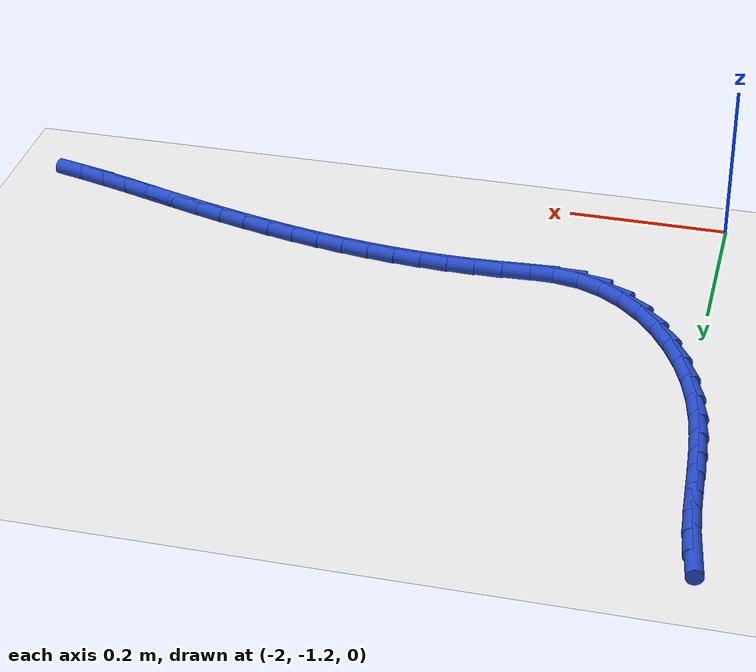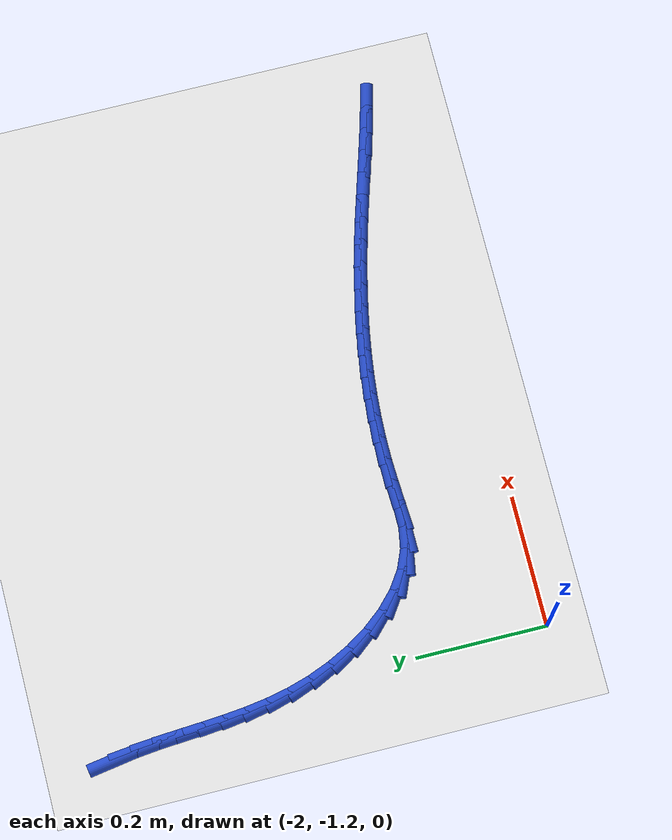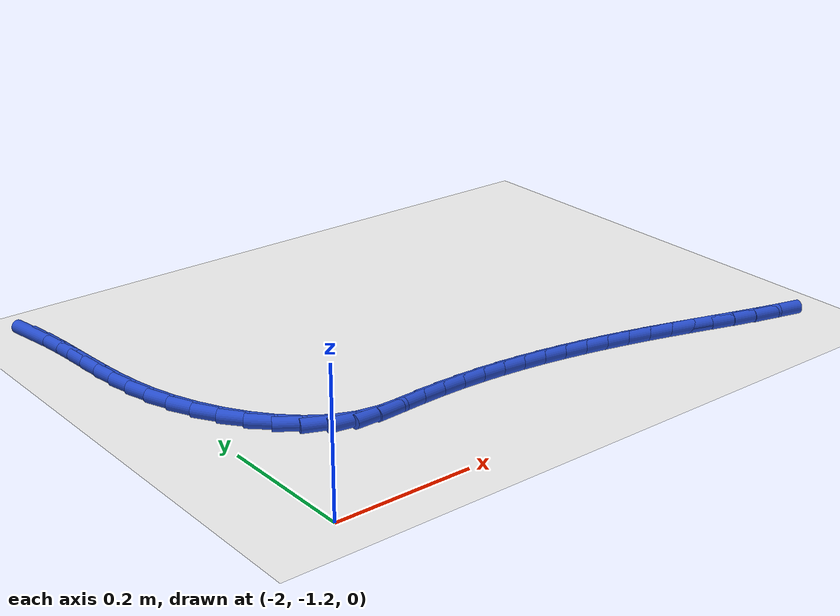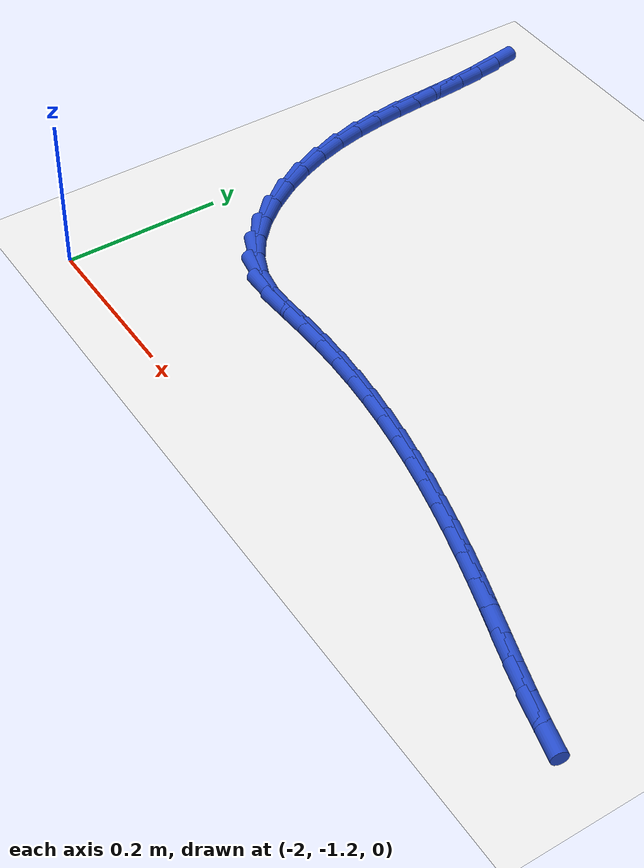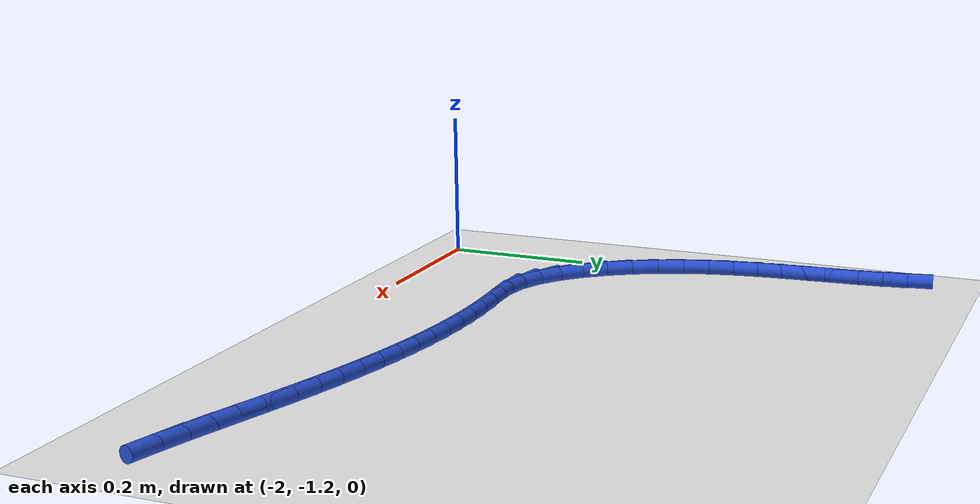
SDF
<sdf version="1.6">
 <world name="default">
  <model name="ground_plane">
   <static>1</static>
   <link name="link">
    <collision name="collision">
     <geometry><plane><normal>0 0 1</normal><size>100 100</size></plane></geometry>
     <surface><friction><ode><mu>100</mu><mu2>50</mu2></ode></friction></surface>
    </collision>
    <visual name="visual">
     <cast_shadows>0</cast_shadows>
     <geometry><plane><normal>0 0 1</normal><size>100 100</size></plane></geometry>
     <material>
      <script><uri>file://media/materials/scripts/gazebo.material</uri><name>Gazebo/WhiteGlow</name></script>
     </material>
    </visual>
   </link>
  </model>
  <model name="line">
   <link name="link_130">
    <pose>-2.0391511525462107 -0.5368124138952737 0.01 0 1.57 -1.4116310588835854</pose>
    <collision name="collision">
     <geometry><cylinder><radius>0.01</radius><length>0.08</length></cylinder></geometry>
    </collision>
    <visual name="visual">
     <material>
      <script><name>Gazebo/Blue</name><uri>file://media/materials/scripts/gazebo.material</uri></script>
     </material>
     <geometry><cylinder><radius>0.01</radius><length>0.08</length></cylinder></geometry>
    </visual>
   </link>
   <link name="link_131">
    <pose>-2.0337918735371385 -0.5701987542749885 0.01 0 1.57 -1.4622082893331223</pose>
    <collision name="collision">
     <geometry><cylinder><radius>0.01</radius><length>0.08</length></cylinder></geometry>
    </collision>
    <visual name="visual">
     <material>
      <script><name>Gazebo/Blue</name><uri>file://media/materials/scripts/gazebo.material</uri></script>
     </material>
     <geometry><cylinder><radius>0.01</radius><length>0.08</length></cylinder></geometry>
    </visual>
   </link>
   <link name="link_132">
    <pose>-2.0301420194632787 -0.6036784752998027 0.01 0 1.57 -1.4935284671865934</pose>
    <collision name="collision">
     <geometry><cylinder><radius>0.01</radius><length>0.08</length></cylinder></geometry>
    </collision>
    <visual name="visual">
     <material>
      <script><name>Gazebo/Blue</name><uri>file://media/materials/scripts/gazebo.material</uri></script>
     </material>
     <geometry><cylinder><radius>0.01</radius><length>0.08</length></cylinder></geometry>
    </visual>
   </link>
   <link name="link_133">
    <pose>-2.0275410725518883 -0.637272892170147 0.01 0 1.57 -1.5052948650631381</pose>
    <collision name="collision">
     <geometry><cylinder><radius>0.01</radius><length>0.08</length></cylinder></geometry>
    </collision>
    <visual name="visual">
     <material>
      <script><name>Gazebo/Blue</name><uri>file://media/materials/scripts/gazebo.material</uri></script>
     </material>
     <geometry><cylinder><radius>0.01</radius><length>0.08</length></cylinder></geometry>
    </visual>
   </link>
   <link name="link_134">
    <pose>-2.025328515030222 -0.6710033200864517 0.01 0 1.57 -1.4976062398490604</pose>
    <collision name="collision">
     <geometry><cylinder><radius>0.01</radius><length>0.08</length></cylinder></geometry>
    </collision>
    <visual name="visual">
     <material>
      <script><name>Gazebo/Blue</name><uri>file://media/materials/scripts/gazebo.material</uri></script>
     </material>
     <geometry><cylinder><radius>0.01</radius><length>0.08</length></cylinder></geometry>
    </visual>
   </link>
   <link name="link_135">
    <pose>-2.022843829125537 -0.7048910742491474 0.01 0 1.57 -1.4708169192723002</pose>
    <collision name="collision">
     <geometry><cylinder><radius>0.01</radius><length>0.08</length></cylinder></geometry>
    </collision>
    <visual name="visual">
     <material>
      <script><name>Gazebo/Blue</name><uri>file://media/materials/scripts/gazebo.material</uri></script>
     </material>
     <geometry><cylinder><radius>0.01</radius><length>0.08</length></cylinder></geometry>
    </visual>
   </link>
   <link name="link_136">
    <pose>-2.0194264970650897 -0.7389574698586624 0.01 0 1.57 -1.4256032359720372</pose>
    <collision name="collision">
     <geometry><cylinder><radius>0.01</radius><length>0.08</length></cylinder></geometry>
    </collision>
    <visual name="visual">
     <material>
      <script><name>Gazebo/Blue</name><uri>file://media/materials/scripts/gazebo.material</uri></script>
     </material>
     <geometry><cylinder><radius>0.01</radius><length>0.08</length></cylinder></geometry>
    </visual>
   </link>
   <link name="link_137">
    <pose>-2.014416001076136 -0.7732238221154277 0.01 0 1.57 -1.3631994463703883</pose>
    <collision name="collision">
     <geometry><cylinder><radius>0.01</radius><length>0.08</length></cylinder></geometry>
    </collision>
    <visual name="visual">
     <material>
      <script><name>Gazebo/Blue</name><uri>file://media/materials/scripts/gazebo.material</uri></script>
     </material>
     <geometry><cylinder><radius>0.01</radius><length>0.08</length></cylinder></geometry>
    </visual>
   </link>
   <link name="link_138">
    <pose>-2.007151823385932 -0.8077114462198732 0.01 0 1.57 -1.2857203975071798</pose>
    <collision name="collision">
     <geometry><cylinder><radius>0.01</radius><length>0.08</length></cylinder></geometry>
    </collision>
    <visual name="visual">
     <material>
      <script><name>Gazebo/Blue</name><uri>file://media/materials/scripts/gazebo.material</uri></script>
     </material>
     <geometry><cylinder><radius>0.01</radius><length>0.08</length></cylinder></geometry>
    </visual>
   </link>
   <link name="link_139">
    <pose>-1.9969741061770971 -0.8424408015798487 0.01 0 1.57 -1.1990370280453868</pose>
    <collision name="collision">
     <geometry><cylinder><radius>0.01</radius><length>0.08</length></cylinder></geometry>
    </collision>
    <visual name="visual">
     <material>
      <script><name>Gazebo/Blue</name><uri>file://media/materials/scripts/gazebo.material</uri></script>
     </material>
     <geometry><cylinder><radius>0.01</radius><length>0.08</length></cylinder></geometry>
    </visual>
   </link>
   <link name="link_140">
    <pose>-1.983442064415619 -0.8771482664774647 0.01 0 1.57 -1.108856317815383</pose>
    <collision name="collision">
     <geometry><cylinder><radius>0.01</radius><length>0.08</length></cylinder></geometry>
    </collision>
    <visual name="visual">
     <material>
      <script><name>Gazebo/Blue</name><uri>file://media/materials/scripts/gazebo.material</uri></script>
     </material>
     <geometry><cylinder><radius>0.01</radius><length>0.08</length></cylinder></geometry>
    </visual>
   </link>
   <link name="link_141">
    <pose>-1.9666498714857175 -0.91087651554375 0.01 0 1.57 -1.0105383488620987</pose>
    <collision name="collision">
     <geometry><cylinder><radius>0.01</radius><length>0.08</length></cylinder></geometry>
    </collision>
    <visual name="visual">
     <material>
      <script><name>Gazebo/Blue</name><uri>file://media/materials/scripts/gazebo.material</uri></script>
     </material>
     <geometry><cylinder><radius>0.01</radius><length>0.08</length></cylinder></geometry>
    </visual>
   </link>
   <link name="link_142">
    <pose>-1.9467718282372444 -0.9425643186695399 0.01 0 1.57 -0.8977493741592989</pose>
    <collision name="collision">
     <geometry><cylinder><radius>0.01</radius><length>0.08</length></cylinder></geometry>
    </collision>
    <visual name="visual">
     <material>
      <script><name>Gazebo/Blue</name><uri>file://media/materials/scripts/gazebo.material</uri></script>
     </material>
     <geometry><cylinder><radius>0.01</radius><length>0.08</length></cylinder></geometry>
    </visual>
   </link>
   <link name="link_143">
    <pose>-1.9239822355200504 -0.9711504457456698 0.01 0 1.57 -0.7633072822594412</pose>
    <collision name="collision">
     <geometry><cylinder><radius>0.01</radius><length>0.08</length></cylinder></geometry>
    </collision>
    <visual name="visual">
     <material>
      <script><name>Gazebo/Blue</name><uri>file://media/materials/scripts/gazebo.material</uri></script>
     </material>
     <geometry><cylinder><radius>0.01</radius><length>0.08</length></cylinder></geometry>
    </visual>
   </link>
   <link name="link_144">
    <pose>-1.8984553941839895 -0.995573666662974 0.01 0 1.57 -0.5995591462516696</pose>
    <collision name="collision">
     <geometry><cylinder><radius>0.01</radius><length>0.08</length></cylinder></geometry>
    </collision>
    <visual name="visual">
     <material>
      <script><name>Gazebo/Blue</name><uri>file://media/materials/scripts/gazebo.material</uri></script>
     </material>
     <geometry><cylinder><radius>0.01</radius><length>0.08</length></cylinder></geometry>
    </visual>
   </link>
   <link name="link_145">
    <pose>-1.8703656050789115 -1.0147727513122873 0.01 0 1.57 -0.4007691577540221</pose>
    <collision name="collision">
     <geometry><cylinder><radius>0.01</radius><length>0.08</length></cylinder></geometry>
    </collision>
    <visual name="visual">
     <material>
      <script><name>Gazebo/Blue</name><uri>file://media/materials/scripts/gazebo.material</uri></script>
     </material>
     <geometry><cylinder><radius>0.01</radius><length>0.08</length></cylinder></geometry>
    </visual>
   </link>
   <link name="link_146">
    <pose>-1.839887169054669 -1.0276864695844454 0.01 0 1.57 -0.17290691499461383</pose>
    <collision name="collision">
     <geometry><cylinder><radius>0.01</radius><length>0.08</length></cylinder></geometry>
    </collision>
    <visual name="visual">
     <material>
      <script><name>Gazebo/Blue</name><uri>file://media/materials/scripts/gazebo.material</uri></script>
     </material>
     <geometry><cylinder><radius>0.01</radius><length>0.08</length></cylinder></geometry>
    </visual>
   </link>
   <link name="link_147">
    <pose>-1.807218109321123 -1.0333921501044427 0.01 0 1.57 8.645977932761643e-05</pose>
    <collision name="collision">
     <geometry><cylinder><radius>0.01</radius><length>0.08</length></cylinder></geometry>
    </collision>
    <visual name="visual">
     <material>
      <script><name>Gazebo/Blue</name><uri>file://media/materials/scripts/gazebo.material</uri></script>
     </material>
     <geometry><cylinder><radius>0.01</radius><length>0.08</length></cylinder></geometry>
    </visual>
   </link>
   <link name="link_148">
    <pose>-1.7729711263757892 -1.0333891891178473 0.01 0 1.57 0.06164029369593296</pose>
    <collision name="collision">
     <geometry><cylinder><radius>0.01</radius><length>0.08</length></cylinder></geometry>
    </collision>
    <visual name="visual">
     <material>
      <script><name>Gazebo/Blue</name><uri>file://media/materials/scripts/gazebo.material</uri></script>
     </material>
     <geometry><cylinder><radius>0.01</radius><length>0.08</length></cylinder></geometry>
    </visual>
   </link>
   <link name="link_149">
    <pose>-1.738111733760208 -1.0312377203748304 0.01 0 1.57 0.03874990904872346</pose>
    <collision name="collision">
     <geometry><cylinder><radius>0.01</radius><length>0.08</length></cylinder></geometry>
    </collision>
    <visual name="visual">
     <material>
      <script><name>Gazebo/Blue</name><uri>file://media/materials/scripts/gazebo.material</uri></script>
     </material>
     <geometry><cylinder><radius>0.01</radius><length>0.08</length></cylinder></geometry>
    </visual>
   </link>
   <link name="link_150">
    <pose>-1.703431191760309 -1.0298931794916335 0.01 0 1.57 0.0010948040864820162</pose>
    <collision name="collision">
     <geometry><cylinder><radius>0.01</radius><length>0.08</length></cylinder></geometry>
    </collision>
    <visual name="visual">
     <material>
      <script><name>Gazebo/Blue</name><uri>file://media/materials/scripts/gazebo.material</uri></script>
     </material>
     <geometry><cylinder><radius>0.01</radius><length>0.08</length></cylinder></geometry>
    </visual>
   </link>
   <link name="link_151">
    <pose>-1.6690413239406934 -1.0298555293087686 0.01 0 1.57 -0.035341846957009475</pose>
    <collision name="collision">
     <geometry><cylinder><radius>0.01</radius><length>0.08</length></cylinder></geometry>
    </collision>
    <visual name="visual">
     <material>
      <script><name>Gazebo/Blue</name><uri>file://media/materials/scripts/gazebo.material</uri></script>
     </material>
     <geometry><cylinder><radius>0.01</radius><length>0.08</length></cylinder></geometry>
    </visual>
   </link>
   <link name="link_152">
    <pose>-1.6348984389970709 -1.0310627045708434 0.01 0 1.57 -0.07030128180970327</pose>
    <collision name="collision">
     <geometry><cylinder><radius>0.01</radius><length>0.08</length></cylinder></geometry>
    </collision>
    <visual name="visual">
     <material>
      <script><name>Gazebo/Blue</name><uri>file://media/materials/scripts/gazebo.material</uri></script>
     </material>
     <geometry><cylinder><radius>0.01</radius><length>0.08</length></cylinder></geometry>
    </visual>
   </link>
   <link name="link_153">
    <pose>-1.600958845625156 -1.0334526400224655 0.01 0 1.57 -0.10355456821494392</pose>
    <collision name="collision">
     <geometry><cylinder><radius>0.01</radius><length>0.08</length></cylinder></geometry>
    </collision>
    <visual name="visual">
     <material>
      <script><name>Gazebo/Blue</name><uri>file://media/materials/scripts/gazebo.material</uri></script>
     </material>
     <geometry><cylinder><radius>0.01</radius><length>0.08</length></cylinder></geometry>
    </visual>
   </link>
   <link name="link_154">
    <pose>-1.5671788525206594 -1.036963270408243 0.01 0 1.57 -0.13490658181981052</pose>
    <collision name="collision">
     <geometry><cylinder><radius>0.01</radius><length>0.08</length></cylinder></geometry>
    </collision>
    <visual name="visual">
     <material>
      <script><name>Gazebo/Blue</name><uri>file://media/materials/scripts/gazebo.material</uri></script>
     </material>
     <geometry><cylinder><radius>0.01</radius><length>0.08</length></cylinder></geometry>
    </visual>
   </link>
   <link name="link_155">
    <pose>-1.5335147683792936 -1.0415325304727836 0.01 0 1.57 -0.16419791299892214</pose>
    <collision name="collision">
     <geometry><cylinder><radius>0.01</radius><length>0.08</length></cylinder></geometry>
    </collision>
    <visual name="visual">
     <material>
      <script><name>Gazebo/Blue</name><uri>file://media/materials/scripts/gazebo.material</uri></script>
     </material>
     <geometry><cylinder><radius>0.01</radius><length>0.08</length></cylinder></geometry>
    </visual>
   </link>
   <link name="link_156">
    <pose>-1.4999229018967697 -1.0470983549606951 0.01 0 1.57 -0.19130488268220566</pose>
    <collision name="collision">
     <geometry><cylinder><radius>0.01</radius><length>0.08</length></cylinder></geometry>
    </collision>
    <visual name="visual">
     <material>
      <script><name>Gazebo/Blue</name><uri>file://media/materials/scripts/gazebo.material</uri></script>
     </material>
     <geometry><cylinder><radius>0.01</radius><length>0.08</length></cylinder></geometry>
    </visual>
   </link>
   <link name="link_157">
    <pose>-1.466359561768802 -1.0535986786165856 0.01 0 1.57 -0.21613799427160021</pose>
    <collision name="collision">
     <geometry><cylinder><radius>0.01</radius><length>0.08</length></cylinder></geometry>
    </collision>
    <visual name="visual">
     <material>
      <script><name>Gazebo/Blue</name><uri>file://media/materials/scripts/gazebo.material</uri></script>
     </material>
     <geometry><cylinder><radius>0.01</radius><length>0.08</length></cylinder></geometry>
    </visual>
   </link>
   <link name="link_158">
    <pose>-1.4327810566911008 -1.0609714361850624 0.01 0 1.57 -0.2386392249904735</pose>
    <collision name="collision">
     <geometry><cylinder><radius>0.01</radius><length>0.08</length></cylinder></geometry>
    </collision>
    <visual name="visual">
     <material>
      <script><name>Gazebo/Blue</name><uri>file://media/materials/scripts/gazebo.material</uri></script>
     </material>
     <geometry><cylinder><radius>0.01</radius><length>0.08</length></cylinder></geometry>
    </visual>
   </link>
   <link name="link_159">
    <pose>-1.3991436953593783 -1.0691545624107335 0.01 0 1.57 -0.258778571815741</pose>
    <collision name="collision">
     <geometry><cylinder><radius>0.01</radius><length>0.08</length></cylinder></geometry>
    </collision>
    <visual name="visual">
     <material>
      <script><name>Gazebo/Blue</name><uri>file://media/materials/scripts/gazebo.material</uri></script>
     </material>
     <geometry><cylinder><radius>0.01</radius><length>0.08</length></cylinder></geometry>
    </visual>
   </link>
   <link name="link_160">
    <pose>-1.3654037864693458 -1.0780859920382069 0.01 0 1.57 -0.27655023035787685</pose>
    <collision name="collision">
     <geometry><cylinder><radius>0.01</radius><length>0.08</length></cylinder></geometry>
    </collision>
    <visual name="visual">
     <material>
      <script><name>Gazebo/Blue</name><uri>file://media/materials/scripts/gazebo.material</uri></script>
     </material>
     <geometry><cylinder><radius>0.01</radius><length>0.08</length></cylinder></geometry>
    </visual>
   </link>
   <link name="link_161">
    <pose>-1.3315176387167176 -1.08770365981209 0.01 0 1.57 -0.2916339629951762</pose>
    <collision name="collision">
     <geometry><cylinder><radius>0.01</radius><length>0.08</length></cylinder></geometry>
    </collision>
    <visual name="visual">
     <material>
      <script><name>Gazebo/Blue</name><uri>file://media/materials/scripts/gazebo.material</uri></script>
     </material>
     <geometry><cylinder><radius>0.01</radius><length>0.08</length></cylinder></geometry>
    </visual>
   </link>
   <link name="link_162">
    <pose>-1.2974467204364182 -1.0979315152065163 0.01 0 1.57 -0.3002673828874507</pose>
    <collision name="collision">
     <geometry><cylinder><radius>0.01</radius><length>0.08</length></cylinder></geometry>
    </collision>
    <visual name="visual">
     <material>
      <script><name>Gazebo/Blue</name><uri>file://media/materials/scripts/gazebo.material</uri></script>
     </material>
     <geometry><cylinder><radius>0.01</radius><length>0.08</length></cylinder></geometry>
    </visual>
   </link>
   <link name="link_163">
    <pose>-1.2632122691931704 -1.108531502406078 0.01 0 1.57 -0.3002056712151756</pose>
    <collision name="collision">
     <geometry><cylinder><radius>0.01</radius><length>0.08</length></cylinder></geometry>
    </collision>
    <visual name="visual">
     <material>
      <script><name>Gazebo/Blue</name><uri>file://media/materials/scripts/gazebo.material</uri></script>
     </material>
     <geometry><cylinder><radius>0.01</radius><length>0.08</length></cylinder></geometry>
    </visual>
   </link>
   <link name="link_164">
    <pose>-1.2288739831177782 -1.1191613177212534 0.01 0 1.57 -0.2914855742637492</pose>
    <collision name="collision">
     <geometry><cylinder><radius>0.01</radius><length>0.08</length></cylinder></geometry>
    </collision>
    <visual name="visual">
     <material>
      <script><name>Gazebo/Blue</name><uri>file://media/materials/scripts/gazebo.material</uri></script>
     </material>
     <geometry><cylinder><radius>0.01</radius><length>0.08</length></cylinder></geometry>
    </visual>
   </link>
   <link name="link_165">
    <pose>-1.1944921968625175 -1.129476932162631 0.01 0 1.57 -0.2739582309916984</pose>
    <collision name="collision">
     <geometry><cylinder><radius>0.01</radius><length>0.08</length></cylinder></geometry>
    </collision>
    <visual name="visual">
     <material>
      <script><name>Gazebo/Blue</name><uri>file://media/materials/scripts/gazebo.material</uri></script>
     </material>
     <geometry><cylinder><radius>0.01</radius><length>0.08</length></cylinder></geometry>
    </visual>
   </link>
   <link name="link_166">
    <pose>-1.1601272450796662 -1.1391343167408 0.01 0 1.57 -0.24726059309906737</pose>
    <collision name="collision">
     <geometry><cylinder><radius>0.01</radius><length>0.08</length></cylinder></geometry>
    </collision>
    <visual name="visual">
     <material>
      <script><name>Gazebo/Blue</name><uri>file://media/materials/scripts/gazebo.material</uri></script>
     </material>
     <geometry><cylinder><radius>0.01</radius><length>0.08</length></cylinder></geometry>
    </visual>
   </link>
  </model>
 </world>
</sdf>
